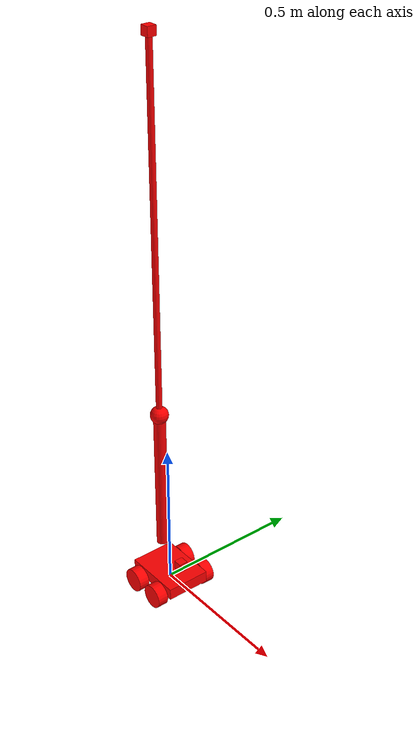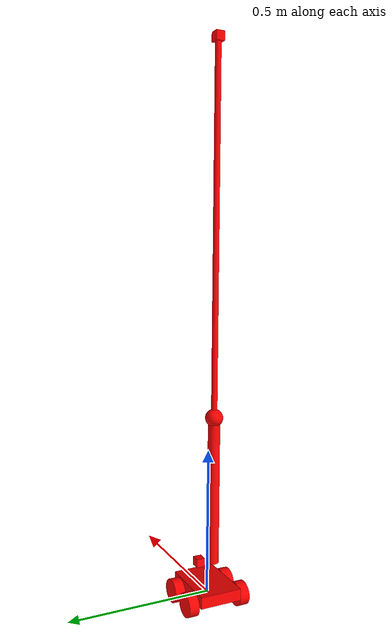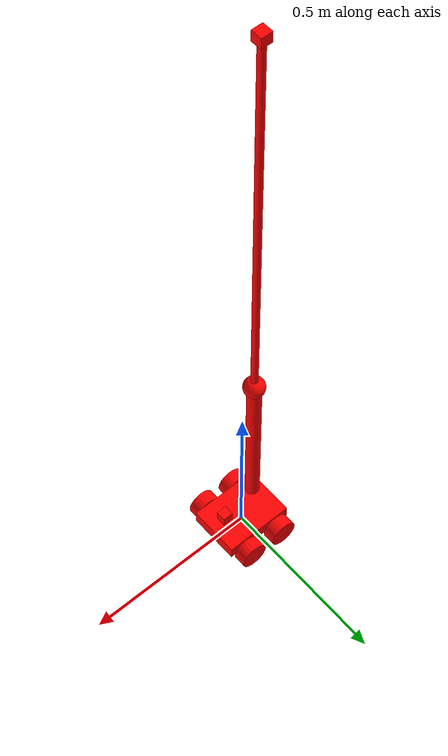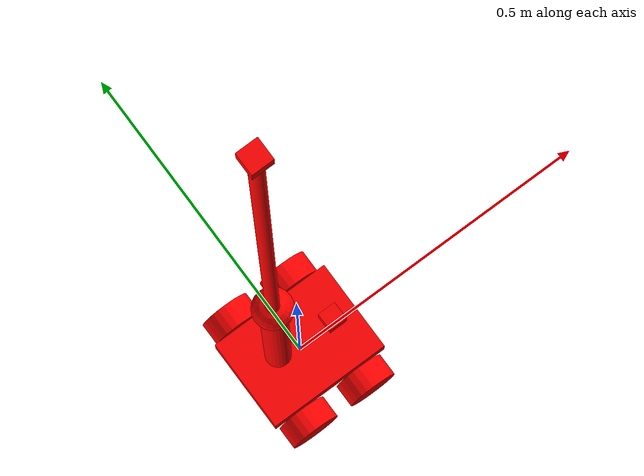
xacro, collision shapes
<?xml version='1.0'?>

<robot name="rosbot"
  xmlns:xacro="http://www.ros.org/wiki/xacro">

  <xacro:arg name="robot_namespace" default=""/>

  <xacro:property name="cameraSize" value="0.05"/>
  <xacro:property name="cameraMass" value="0.1"/>

  <xacro:include filename="$(find rosbot_description)/urdf/materials.xacro" />
  <xacro:include filename="$(find assignment_1)/urdf/rosbot.gazebo" />

  <link name="base_link"></link>
  <joint name="base_link_joint" type="fixed">
    <origin xyz="0 0 0" rpy="0 0 0"/>
    <parent link="base_link"/>
    <child link="body_link"/>
  </joint>

  <link name='body_link'>
    <pose>0 0 0.1 0 0 0</pose>

    <inertial>
      <mass value="5"/>
      <origin xyz="0 0 0.04" rpy=" 0 0 0"/>
      <inertia
      ixx="0.01" ixy="0.01" ixz="0"
      iyy="0.01" iyz="0.01"
      izz="0.01"
      />
    </inertial>

    <collision>
      <origin xyz="0 0 0.02" rpy="0 0 0"/>
      <geometry>
        <box size="0.20 0.15 0.04"/>
      </geometry>
    </collision>

    <visual>
      <origin xyz="0 0 -0.02" rpy=" 1.5707 0 1.5707"/>
      <geometry>
        <mesh filename="package://rosbot_description/meshes/box.stl" scale="0.001 0.001 0.001" />
      </geometry>
      <material name="White"/>
    </visual>

  </link>

  <joint name="top_joint" type="fixed">
    <axis xyz="0 1 0" />
    <origin xyz="0 0 0" rpy="0 0 0"/>
    <parent link="body_link"/>
    <child link="top"/>
  </joint>

  <link name='top'>
    <pose>0 0 0 0 0 0</pose>

    <inertial>
      <mass value="0.01"/>
      <origin xyz="0 0 0.055" rpy=" 0 0 0"/>
      <inertia
      ixx="0.0" ixy="0" ixz="0"
      iyy="0.0" iyz="0"
      izz="0.0"
      />
    </inertial>
    <visual>
      <origin xyz="0 0 0.055" rpy=" 1.5707 0 1.5707"/>
      <geometry>
        <mesh filename="package://rosbot_description/meshes/upper.stl" scale="0.001 0.001 0.001" />
      </geometry>
      <material name="Red"/>
    </visual>
  </link>

  <link name="front_left_wheel">
    <collision>
      <origin xyz="0 -0.014 0" rpy="${pi/2} 0 0"/>
      <geometry>
        <cylinder length="0.036" radius="0.04"/>
      </geometry>
      <surface>
        <friction>
          <ode>
            <mu>10</mu>
            <mu2>10</mu2>
          </ode>
        </friction>
      </surface>
    </collision>
    <visual>
      <origin xyz="0 0 0" rpy="0 0 1.5707"/>
      <geometry>
        <mesh filename="package://rosbot_description/meshes/wheel.stl" scale="0.001 0.001 0.001" />
      </geometry>
      <material name="Black"/>
    </visual>
    <inertial>
      <origin xyz="0 0 0" rpy="0 1.5707 1.5707"/>
      <mass value="0.5"/>
      <inertia
      ixx="0.001" ixy="0.0" ixz="0.0"
      iyy="0.001" iyz="0.0"
      izz="0.001"/>
    </inertial>
  </link>

  <link name="front_right_wheel">
    <collision>
      <origin xyz="0 0.014 0" rpy="${pi/2} 0 0"/>
      <geometry>
        <cylinder length="0.036" radius="0.04"/>
      </geometry>
      <surface>
        <friction>
          <ode>
            <mu>10</mu>
            <mu2>10</mu2>
          </ode>
        </friction>
      </surface>
    </collision>
    <visual>
      <origin xyz="0 0 0" rpy="0 0 -1.5707"/>
      <geometry>
        <mesh filename="package://rosbot_description/meshes/wheel.stl" scale="0.001 0.001 0.001" />
      </geometry>
      <material name="Black"/>
    </visual>
    <inertial>
      <origin xyz="0 0 0" rpy="0 1.5707 1.5707"/>
      <mass value="0.5"/>
      <inertia
      ixx="0.001" ixy="0.0" ixz="0.0"
      iyy="0.001" iyz="0.0"
      izz="0.001"/>
    </inertial>
  </link>

  <link name="rear_left_wheel">
    <collision>
      <origin xyz="0 -0.014 0" rpy="${pi/2} 0 0"/>
      <geometry>
        <cylinder length="0.036" radius="0.04"/>
      </geometry>
      <surface>
        <friction>
          <ode>
            <mu>10</mu>
            <mu2>10</mu2>
          </ode>
        </friction>
      </surface>
    </collision>
    <visual>
      <origin xyz="0 0 0" rpy="0 0 1.5707"/>
      <geometry>
        <mesh filename="package://rosbot_description/meshes/wheel.stl" scale="0.001 0.001 0.001" />
      </geometry>
      <material name="Black"/>
    </visual>
    <inertial>
      <origin xyz="0 0 0" rpy="0 1.5707 1.5707"/>
      <mass value="0.5"/>
      <inertia
      ixx="0.001" ixy="0.0" ixz="0.0"
      iyy="0.001" iyz="0.0"
      izz="0.001"/>
    </inertial>
  </link>

  <link name="rear_right_wheel">
    <collision>
      <origin xyz="0 0.014 0" rpy="${pi/2} 0 0"/>
      <geometry>
        <cylinder length="0.036" radius="0.04"/>
      </geometry>
      <surface>
        <friction>
          <ode>
            <mu>10</mu>
            <mu2>10</mu2>
          </ode>
        </friction>
      </surface>
    </collision>
    <visual>
      <origin xyz="0 0 0" rpy="0 0 -1.5707"/>
      <geometry>
        <mesh filename="package://rosbot_description/meshes/wheel.stl" scale="0.001 0.001 0.001" />
      </geometry>
      <material name="Black"/>
    </visual>
    <inertial>
      <origin xyz="0 0 0" rpy="0 1.5707 1.5707"/>
      <mass value="0.5"/>
      <inertia
      ixx="0.001" ixy="0.0" ixz="0.0"
      iyy="0.001" iyz="0.0"
      izz="0.001"/>
    </inertial>
  </link>

  <joint type="continuous" name="front_left_wheel_hinge">
    <origin xyz="0.05 0.11 0" rpy="0 0 0"/>
    <child link="front_left_wheel"/>
    <parent link="body_link"/>
    <axis xyz="0 1 0" rpy="0 0 0"/>
    <limit effort="1" velocity="10"/>
    <joint_properties damping="5.0" friction="1.0"/>
  </joint>

  <transmission name="front_left_wheel_trans" type="SimpleTransmission">
    <type>transmission_interface/SimpleTransmission</type>
    <actuator name="front_left_wheel_motor">
      <mechanicalReduction>1</mechanicalReduction>
    </actuator>
    <joint name="front_left_wheel_hinge">
      <hardwareInterface>hardware_interface/EffortJointInterface</hardwareInterface>
    </joint>
  </transmission>

  <joint type="continuous" name="front_right_wheel_hinge">
    <origin xyz="0.05 -0.11 0" rpy="0 0 0"/>
    <child link="front_right_wheel"/>
    <parent link="body_link"/>
    <axis xyz="0 1 0" rpy="0 0 0"/>
    <limit effort="1" velocity="10"/>
    <joint_properties damping="5.0" friction="1.0"/>
  </joint>

  <transmission name="front_right_wheel_trans" type="SimpleTransmission">
    <type>transmission_interface/SimpleTransmission</type>
    <actuator name="front_right_wheel_motor">
      <mechanicalReduction>1</mechanicalReduction>
    </actuator>
    <joint name="front_right_wheel_hinge">
      <hardwareInterface>hardware_interface/EffortJointInterface</hardwareInterface>
    </joint>
  </transmission>

  <joint type="continuous" name="rear_left_wheel_hinge">
    <origin xyz="-0.055 0.11 0" rpy="0 0 0"/>
    <child link="rear_left_wheel"/>
    <parent link="body_link"/>
    <axis xyz="0 1 0" rpy="0 0 0"/>
    <limit effort="1" velocity="10"/>
    <joint_properties damping="5.0" friction="1.0"/>
  </joint>

  <transmission name="rear_left_wheel_trans" type="SimpleTransmission">
    <type>transmission_interface/SimpleTransmission</type>
    <actuator name="rear_left_wheel_motor">
      <mechanicalReduction>1</mechanicalReduction>
    </actuator>
    <joint name="rear_left_wheel_hinge">
      <hardwareInterface>hardware_interface/EffortJointInterface</hardwareInterface>
    </joint>
  </transmission>

  <joint type="continuous" name="rear_right_wheel_hinge">
    <origin xyz="-0.055 -0.11 0" rpy="0 0 0"/>
    <child link="rear_right_wheel"/>
    <parent link="body_link"/>
    <axis xyz="0 1 0" rpy="0 0 0"/>
    <limit effort="1" velocity="10"/>
    <joint_properties damping="5.0" friction="1.0"/>
  </joint>

  <transmission name="rear_right_wheel_trans" type="SimpleTransmission">
    <type>transmission_interface/SimpleTransmission</type>
    <actuator name="rear_right_wheel_motor">
      <mechanicalReduction>1</mechanicalReduction>
    </actuator>
    <joint name="rear_right_wheel_hinge">
      <hardwareInterface>hardware_interface/EffortJointInterface</hardwareInterface>
    </joint>
  </transmission>

  <!-- Orbbec Astra RGBD Camera -->

  <joint name="joint1" type="continuous">
    <origin xyz="-0.038 0 0.123" rpy="0 0 0"/>
    <parent link="body_link"/>
    <child link="link1"/>
    <axis rpy="0 0 0" xyz="0 0 1"/>
    <limit effort="1000.0" velocity="0.2"/>
    <!--limit lower="-3.14" upper="3.14" effort="1000.0" velocity="0.2"/-->
    <joint_properties damping="1.0" friction="1.0"/>
  </joint>

  <link name="link1">
      <collision>
        <origin xyz="0 0 0.25" rpy="0 0 0"/>
        <geometry>
          <!--box size="0.01 0.01 0.5"/-->
          <cylinder radius="0.02" length="0.5"/>
        </geometry>
      </collision>
      <visual>
        <origin xyz="0 0 0.25" rpy="0 0 0"/>
        <geometry>
    <!--box size="0.01 0.01 0.5"/-->
    <cylinder radius="0.02" length="0.5"/>
        </geometry>
        <material name="White">
    <color rgba="1 0 0 1"/>
        </material>
      </visual>
      <inertial>
        <mass value="0.025" />
        <origin xyz="0 0 0" rpy="0 0 0"/>
        <inertia ixx="0.000010279" ixy="0" ixz="0" iyy="0.000010279" iyz="0" izz="0.000007225"/>
      </inertial>
  </link>

  <link name="sphere1">
      <collision>
        <origin xyz="0 0 0" rpy="0 0 0"/>
        <geometry>
    <sphere radius="0.03"/>
        </geometry>
      </collision>
      <visual>
        <origin xyz="0 0 0" rpy="0 0 0"/>
        <geometry>
    <sphere radius="0.03"/>
        </geometry>
        <material name="White">
    <color rgba="1 0 0 1"/>
        </material>
      </visual>
      <inertial>
        <mass value="0.001" />
        <origin xyz="0 0 0" rpy="0 0 0"/>
        <inertia ixx="0.000010279" ixy="0" ixz="0" iyy="0.000010279" iyz="0" izz="0.000010279"/>
      </inertial>
  </link>
  <joint name="joint_sphere" type="fixed">
    <origin xyz="0 0 0.5" rpy="0 0 0"/>
    <parent link="link1"/>
    <child link="sphere1"/>
  </joint>

  <link name="link2">
      <collision>
        <origin xyz="0 0 0.6" rpy="0 0 0"/>
        <geometry>
    <cylinder radius="0.01" length="1.2"/>
        </geometry>
      </collision>
      <visual>
        <origin xyz="0 0 0.6" rpy="0 0 0"/>
        <geometry>
    <cylinder radius="0.01" length="1.2"/>
        </geometry>
        <material name="White">
    <color rgba="1 0 0 1"/>
        </material>
      </visual>
      <inertial>
        <mass value="0.005" />
        <origin xyz="0 0 0" rpy="0 0 0"/>
        <inertia ixx="0.000010279" ixy="0" ixz="0" iyy="0.000010279" iyz="0" izz="0.000010279"/>
      </inertial>
  </link>

  <joint name="joint2" type="revolute">
    <origin xyz="0 0 0" rpy="0 0 0"/>
    <parent link="sphere1"/>
    <child link="link2"/>
    <axis rpy="0 0 0" xyz="0 1 0"/>
      <limit lower="-1.57" upper="1.57" effort="1000.0" velocity="0.2"/>
    <!--limit lower="-3.14" upper="3.14" effort="1000.0" velocity="0.2"/-->
    <joint_properties damping="1.0" friction="1.0"/>
  </joint>

  <link name="camera_link">
	    <collision>
	      <origin xyz="0 0 0.015" rpy="0 0 0"/>
	      <geometry>
		<box size="0.03 0.03 0.03"/>
	      </geometry>
	    </collision>
	    <visual>
	      <origin xyz="0 0 0.015" rpy="0 0 0"/>
	      <geometry>
		<box size="0.03 0.03 0.03"/>
	      </geometry>
	      <material name="Red">
		<color rgba="1 0 0 1"/>
	      </material>
	    </visual>
	    <inertial>
	      <mass value="1e-5" />
	      <origin xyz="0 0 0" rpy="0 0 0"/>
	      <inertia ixx="1e-6" ixy="0" ixz="0" iyy="1e-6" iyz="0" izz="1e-6" />
	    </inertial>
  </link>
  <joint name="joint_camera" type="revolute">
      <axis rpy="0 0 0" xyz="0 1 0"/>
      <limit lower="-3.14" upper="3.14" effort="1000.0" velocity="0.2"/>
      <joint_properties damping="1.0" friction="1.0"/>
      <origin xyz="0 0 1.2" rpy="0 0 0"/>
      <parent link="link2"/>
      <child link="camera_link"/>
  </joint>

  <link name="hokuyo_link">
     <collision>
       <origin xyz="0 0 0.025" rpy="0 0 0"/>
       <geometry>
   <box size="0.03 0.03 0.03"/>
       </geometry>
     </collision>
     <visual>
       <origin xyz="0 0 0.025" rpy="0 0 0"/>
       <geometry>
   <box size="0.03 0.03 0.03"/>
       </geometry>
       <material name="Black">
   <color rgba="1 0 0 1"/>
       </material>
     </visual>
     <inertial>
       <mass value="1e-5" />
       <origin xyz="0 0 0" rpy="0 0 0"/>
       <inertia ixx="1e-6" ixy="0" ixz="0" iyy="1e-6" iyz="0" izz="1e-6" />
     </inertial>
  </link>
  <joint name="hokuyo_joint" type="fixed">
     <axis xyz="0 1 0" />
     <origin xyz="0.06 0 0.057" rpy="0 0 0"/>
     <parent link="body_link"/>
     <child link="hokuyo_link"/>
  </joint>

  <!-- Trasmission for camera rotation joint-->
<transmission name="trans_joint1">
  <type>transmission_interface/SimpleTransmission</type>
  <joint name="joint1">
    <hardwareInterface>hardware_interface/EffortJointInterface</hardwareInterface>
  </joint>
  <actuator name="motor_joint1">
    <hardwareInterface>hardware_interface/EffortJointInterface</hardwareInterface>
    <mechanicalReduction>1</mechanicalReduction>
  </actuator>
</transmission>

<transmission name="trans_joint2">
  <type>transmission_interface/SimpleTransmission</type>
  <joint name="joint2">
    <hardwareInterface>hardware_interface/EffortJointInterface</hardwareInterface>
  </joint>
  <actuator name="motor_joint2">
    <hardwareInterface>hardware_interface/EffortJointInterface</hardwareInterface>
    <mechanicalReduction>1</mechanicalReduction>
  </actuator>
</transmission>

<transmission name="trans_joint_camera">
  <type>transmission_interface/SimpleTransmission</type>
  <joint name="joint_camera">
    <hardwareInterface>hardware_interface/EffortJointInterface</hardwareInterface>
  </joint>
  <actuator name="motor_joint_camera">
    <hardwareInterface>hardware_interface/EffortJointInterface</hardwareInterface>
    <mechanicalReduction>1</mechanicalReduction>
  </actuator>
</transmission>

</robot>
